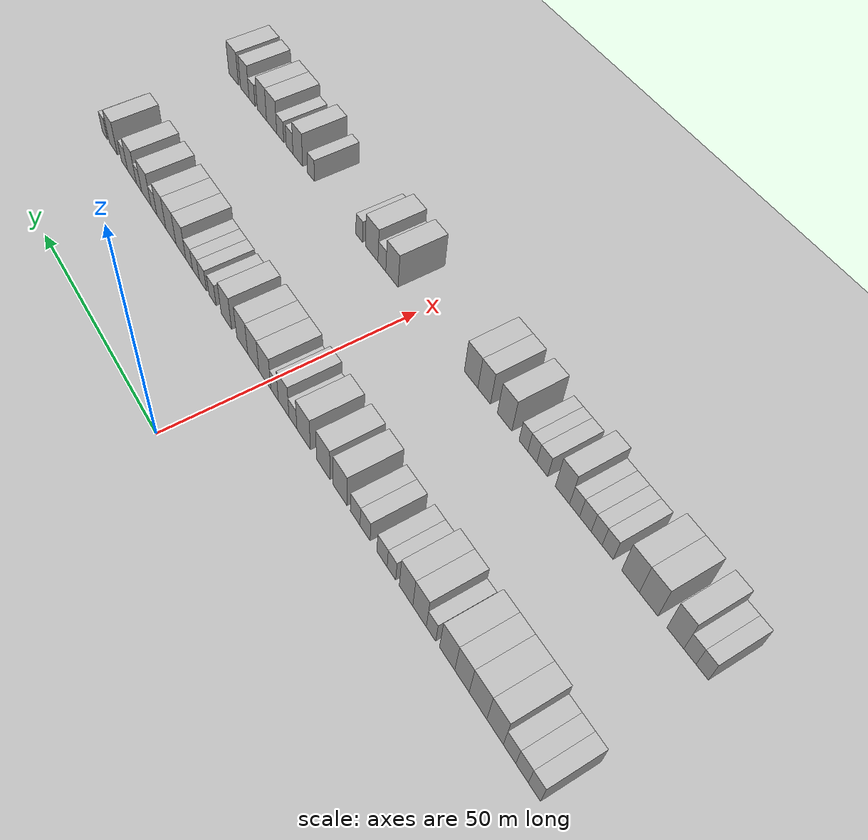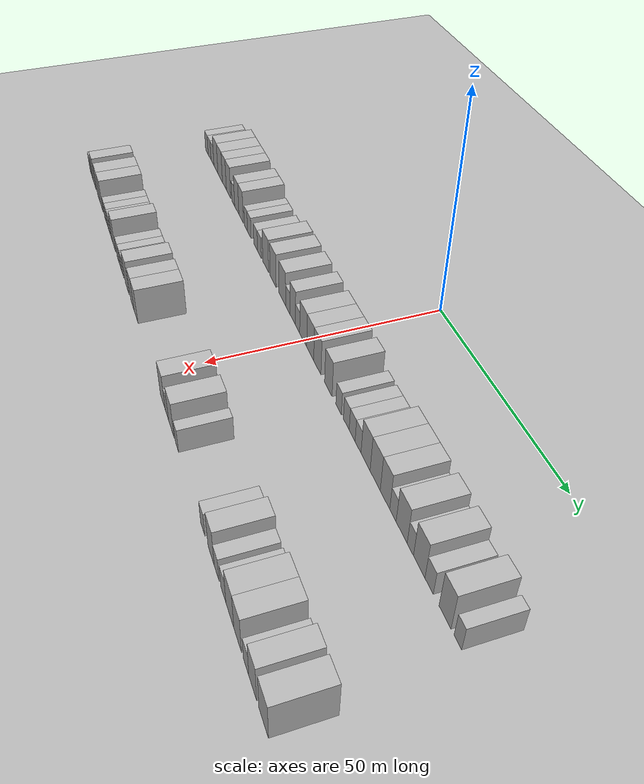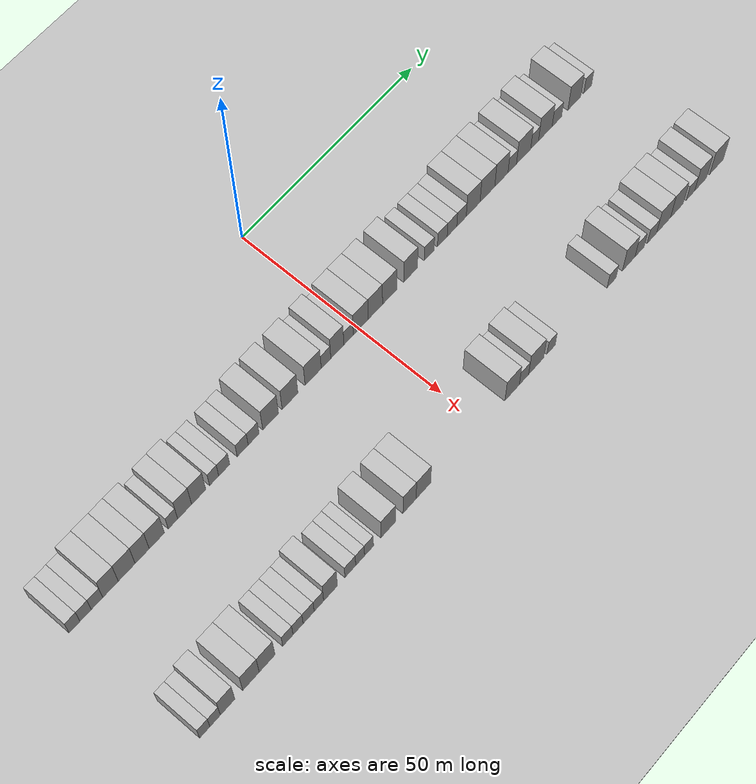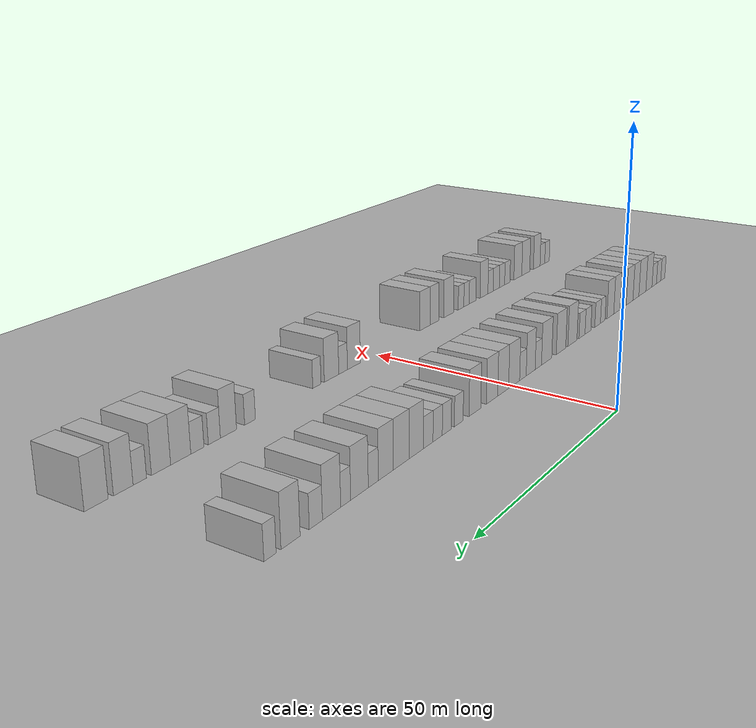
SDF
<sdf version="1.6">
 <world name="default">
  <include><name>ground_plane_1</name><uri>model://HANNAS_ground_plane</uri></include>
  <include>
   <name>ground_plane_2</name>
   <uri>model://HANNAS_ground_plane</uri>
   <pose>100 0 0  0 0 0</pose>
  </include>
  <model name="building_37">
   <static>1</static>
   <pose>25.0000 -76.2087 0 0.000000 0.000000 0.000000</pose>
   <link name="link">
    <pose>0 0 3.00 0 0 0</pose>
    <collision name="collision"><geometry><box><size>10.0000 2.7245 6.0000</size></box></geometry></collision>
    <visual name="visual">
     <cast_shadows>0</cast_shadows>
     <geometry><box><size>10.0000 2.7245 6.0000</size></box></geometry>
     <material>
      <script>
       <uri>model://HANNAS_wall/materials/scripts</uri>
       <uri>model://HANNAS_wall/materials/textures</uri>
       <name>vrc/HANNAS_wall</name>
      </script>
     </material>
    </visual>
   </link>
  </model>
  <model name="building_38">
   <static>1</static>
   <pose>25.0000 -73.4222 0 0.000000 0.000000 0.000000</pose>
   <link name="link">
    <pose>0 0 3.00 0 0 0</pose>
    <collision name="collision"><geometry><box><size>10.0000 2.8485 6.0000</size></box></geometry></collision>
    <visual name="visual">
     <cast_shadows>0</cast_shadows>
     <geometry><box><size>10.0000 2.8485 6.0000</size></box></geometry>
     <material>
      <script>
       <uri>model://HANNAS_wall/materials/scripts</uri>
       <uri>model://HANNAS_wall/materials/textures</uri>
       <name>vrc/HANNAS_wall</name>
      </script>
     </material>
    </visual>
   </link>
  </model>
  <model name="building_39">
   <static>1</static>
   <pose>25.0000 -70.5483 0 0.000000 0.000000 0.000000</pose>
   <link name="link">
    <pose>0 0 3.00 0 0 0</pose>
    <collision name="collision"><geometry><box><size>10.0000 2.8994 6.0000</size></box></geometry></collision>
    <visual name="visual">
     <cast_shadows>0</cast_shadows>
     <geometry><box><size>10.0000 2.8994 6.0000</size></box></geometry>
     <material>
      <script>
       <uri>model://HANNAS_wall/materials/scripts</uri>
       <uri>model://HANNAS_wall/materials/textures</uri>
       <name>vrc/HANNAS_wall</name>
      </script>
     </material>
    </visual>
   </link>
  </model>
  <model name="building_40">
   <static>1</static>
   <pose>25.0000 -67.1381 0 0.000000 0.000000 0.000000</pose>
   <link name="link">
    <pose>0 0 4.50 0 0 0</pose>
    <collision name="collision"><geometry><box><size>10.0000 3.9209 9.0000</size></box></geometry></collision>
    <visual name="visual">
     <cast_shadows>0</cast_shadows>
     <geometry><box><size>10.0000 3.9209 9.0000</size></box></geometry>
     <material>
      <script>
       <uri>model://HANNAS_wall/materials/scripts</uri>
       <uri>model://HANNAS_wall/materials/textures</uri>
       <name>vrc/HANNAS_wall</name>
      </script>
     </material>
    </visual>
   </link>
  </model>
  <model name="building_41">
   <static>1</static>
   <pose>25.0000 -63.0192 0 0.000000 0.000000 0.000000</pose>
   <link name="link">
    <pose>0 0 4.50 0 0 0</pose>
    <collision name="collision"><geometry><box><size>10.0000 4.3170 9.0000</size></box></geometry></collision>
    <visual name="visual">
     <cast_shadows>0</cast_shadows>
     <geometry><box><size>10.0000 4.3170 9.0000</size></box></geometry>
     <material>
      <script>
       <uri>model://HANNAS_wall/materials/scripts</uri>
       <uri>model://HANNAS_wall/materials/textures</uri>
       <name>vrc/HANNAS_wall</name>
      </script>
     </material>
    </visual>
   </link>
  </model>
  <model name="building_42">
   <static>1</static>
   <pose>25.0000 -59.0494 0 0.000000 0.000000 0.000000</pose>
   <link name="link">
    <pose>0 0 4.50 0 0 0</pose>
    <collision name="collision"><geometry><box><size>10.0000 3.6226 9.0000</size></box></geometry></collision>
    <visual name="visual">
     <cast_shadows>0</cast_shadows>
     <geometry><box><size>10.0000 3.6226 9.0000</size></box></geometry>
     <material>
      <script>
       <uri>model://HANNAS_wall/materials/scripts</uri>
       <uri>model://HANNAS_wall/materials/textures</uri>
       <name>vrc/HANNAS_wall</name>
      </script>
     </material>
    </visual>
   </link>
  </model>
  <model name="building_43">
   <static>1</static>
   <pose>25.0000 -55.2728 0 0.000000 0.000000 0.000000</pose>
   <link name="link">
    <pose>0 0 4.50 0 0 0</pose>
    <collision name="collision"><geometry><box><size>10.0000 3.9306 9.0000</size></box></geometry></collision>
    <visual name="visual">
     <cast_shadows>0</cast_shadows>
     <geometry><box><size>10.0000 3.9306 9.0000</size></box></geometry>
     <material>
      <script>
       <uri>model://HANNAS_wall/materials/scripts</uri>
       <uri>model://HANNAS_wall/materials/textures</uri>
       <name>vrc/HANNAS_wall</name>
      </script>
     </material>
    </visual>
   </link>
  </model>
  <model name="building_44">
   <static>1</static>
   <pose>25.0000 -51.0687 0 0.000000 0.000000 0.000000</pose>
   <link name="link">
    <pose>0 0 3.00 0 0 0</pose>
    <collision name="collision"><geometry><box><size>10.0000 2.4778 6.0000</size></box></geometry></collision>
    <visual name="visual">
     <cast_shadows>0</cast_shadows>
     <geometry><box><size>10.0000 2.4778 6.0000</size></box></geometry>
     <material>
      <script>
       <uri>model://HANNAS_wall/materials/scripts</uri>
       <uri>model://HANNAS_wall/materials/textures</uri>
       <name>vrc/HANNAS_wall</name>
      </script>
     </material>
    </visual>
   </link>
  </model>
  <model name="building_45">
   <static>1</static>
   <pose>25.0000 -48.0067 0 0.000000 0.000000 0.000000</pose>
   <link name="link">
    <pose>0 0 4.50 0 0 0</pose>
    <collision name="collision"><geometry><box><size>10.0000 3.6462 9.0000</size></box></geometry></collision>
    <visual name="visual">
     <cast_shadows>0</cast_shadows>
     <geometry><box><size>10.0000 3.6462 9.0000</size></box></geometry>
     <material>
      <script>
       <uri>model://HANNAS_wall/materials/scripts</uri>
       <uri>model://HANNAS_wall/materials/textures</uri>
       <name>vrc/HANNAS_wall</name>
      </script>
     </material>
    </visual>
   </link>
  </model>
  <model name="building_46">
   <static>1</static>
   <pose>25.0000 -44.3082 0 0.000000 0.000000 0.000000</pose>
   <link name="link">
    <pose>0 0 4.50 0 0 0</pose>
    <collision name="collision"><geometry><box><size>10.0000 3.7508 9.0000</size></box></geometry></collision>
    <visual name="visual">
     <cast_shadows>0</cast_shadows>
     <geometry><box><size>10.0000 3.7508 9.0000</size></box></geometry>
     <material>
      <script>
       <uri>model://HANNAS_wall/materials/scripts</uri>
       <uri>model://HANNAS_wall/materials/textures</uri>
       <name>vrc/HANNAS_wall</name>
      </script>
     </material>
    </visual>
   </link>
  </model>
  <model name="building_47">
   <static>1</static>
   <pose>25.0000 -40.2187 0 0.000000 0.000000 0.000000</pose>
   <link name="link">
    <pose>0 0 3.00 0 0 0</pose>
    <collision name="collision"><geometry><box><size>10.0000 2.4282 6.0000</size></box></geometry></collision>
    <visual name="visual">
     <cast_shadows>0</cast_shadows>
     <geometry><box><size>10.0000 2.4282 6.0000</size></box></geometry>
     <material>
      <script>
       <uri>model://HANNAS_wall/materials/scripts</uri>
       <uri>model://HANNAS_wall/materials/textures</uri>
       <name>vrc/HANNAS_wall</name>
      </script>
     </material>
    </visual>
   </link>
  </model>
  <model name="building_48">
   <static>1</static>
   <pose>25.0000 -37.5237 0 0.000000 0.000000 0.000000</pose>
   <link name="link">
    <pose>0 0 3.00 0 0 0</pose>
    <collision name="collision"><geometry><box><size>10.0000 2.9617 6.0000</size></box></geometry></collision>
    <visual name="visual">
     <cast_shadows>0</cast_shadows>
     <geometry><box><size>10.0000 2.9617 6.0000</size></box></geometry>
     <material>
      <script>
       <uri>model://HANNAS_wall/materials/scripts</uri>
       <uri>model://HANNAS_wall/materials/textures</uri>
       <name>vrc/HANNAS_wall</name>
      </script>
     </material>
    </visual>
   </link>
  </model>
  <model name="building_49">
   <static>1</static>
   <pose>25.0000 -32.5608 0 0.000000 0.000000 0.000000</pose>
   <link name="link">
    <pose>0 0 3.00 0 0 0</pose>
    <collision name="collision"><geometry><box><size>10.0000 2.9642 6.0000</size></box></geometry></collision>
    <visual name="visual">
     <cast_shadows>0</cast_shadows>
     <geometry><box><size>10.0000 2.9642 6.0000</size></box></geometry>
     <material>
      <script>
       <uri>model://HANNAS_wall/materials/scripts</uri>
       <uri>model://HANNAS_wall/materials/textures</uri>
       <name>vrc/HANNAS_wall</name>
      </script>
     </material>
    </visual>
   </link>
  </model>
  <model name="building_50">
   <static>1</static>
   <pose>25.0000 -29.5989 0 0.000000 0.000000 0.000000</pose>
   <link name="link">
    <pose>0 0 3.00 0 0 0</pose>
    <collision name="collision"><geometry><box><size>10.0000 2.9595 6.0000</size></box></geometry></collision>
    <visual name="visual">
     <cast_shadows>0</cast_shadows>
     <geometry><box><size>10.0000 2.9595 6.0000</size></box></geometry>
     <material>
      <script>
       <uri>model://HANNAS_wall/materials/scripts</uri>
       <uri>model://HANNAS_wall/materials/textures</uri>
       <name>vrc/HANNAS_wall</name>
      </script>
     </material>
    </visual>
   </link>
  </model>
  <model name="building_51">
   <static>1</static>
   <pose>25.0000 -24.9625 0 0.000000 0.000000 0.000000</pose>
   <link name="link">
    <pose>0 0 4.50 0 0 0</pose>
    <collision name="collision"><geometry><box><size>10.0000 4.3133 9.0000</size></box></geometry></collision>
    <visual name="visual">
     <cast_shadows>0</cast_shadows>
     <geometry><box><size>10.0000 4.3133 9.0000</size></box></geometry>
     <material>
      <script>
       <uri>model://HANNAS_wall/materials/scripts</uri>
       <uri>model://HANNAS_wall/materials/textures</uri>
       <name>vrc/HANNAS_wall</name>
      </script>
     </material>
    </visual>
   </link>
  </model>
  <model name="building_52">
   <static>1</static>
   <pose>25.0000 -19.6324 0 0.000000 0.000000 0.000000</pose>
   <link name="link">
    <pose>0 0 4.50 0 0 0</pose>
    <collision name="collision"><geometry><box><size>10.0000 4.3469 9.0000</size></box></geometry></collision>
    <visual name="visual">
     <cast_shadows>0</cast_shadows>
     <geometry><box><size>10.0000 4.3469 9.0000</size></box></geometry>
     <material>
      <script>
       <uri>model://HANNAS_wall/materials/scripts</uri>
       <uri>model://HANNAS_wall/materials/textures</uri>
       <name>vrc/HANNAS_wall</name>
      </script>
     </material>
    </visual>
   </link>
  </model>
  <model name="building_53">
   <static>1</static>
   <pose>25.0000 -13.2129 0 0.000000 0.000000 0.000000</pose>
   <link name="link">
    <pose>0 0 4.50 0 0 0</pose>
    <collision name="collision"><geometry><box><size>10.0000 4.4921 9.0000</size></box></geometry></collision>
    <visual name="visual">
     <cast_shadows>0</cast_shadows>
     <geometry><box><size>10.0000 4.4921 9.0000</size></box></geometry>
     <material>
      <script>
       <uri>model://HANNAS_wall/materials/scripts</uri>
       <uri>model://HANNAS_wall/materials/textures</uri>
       <name>vrc/HANNAS_wall</name>
      </script>
     </material>
    </visual>
   </link>
  </model>
  <model name="building_54">
   <static>1</static>
   <pose>25.0000 -9.6242 0 0.000000 0.000000 0.000000</pose>
   <link name="link">
    <pose>0 0 3.00 0 0 0</pose>
    <collision name="collision"><geometry><box><size>10.0000 2.6855 6.0000</size></box></geometry></collision>
    <visual name="visual">
     <cast_shadows>0</cast_shadows>
     <geometry><box><size>10.0000 2.6855 6.0000</size></box></geometry>
     <material>
      <script>
       <uri>model://HANNAS_wall/materials/scripts</uri>
       <uri>model://HANNAS_wall/materials/textures</uri>
       <name>vrc/HANNAS_wall</name>
      </script>
     </material>
    </visual>
   </link>
  </model>
  <model name="building_55">
   <static>1</static>
   <pose>25.0000 -6.4341 0 0.000000 0.000000 0.000000</pose>
   <link name="link">
    <pose>0 0 4.50 0 0 0</pose>
    <collision name="collision"><geometry><box><size>10.0000 3.6946 9.0000</size></box></geometry></collision>
    <visual name="visual">
     <cast_shadows>0</cast_shadows>
     <geometry><box><size>10.0000 3.6946 9.0000</size></box></geometry>
     <material>
      <script>
       <uri>model://HANNAS_wall/materials/scripts</uri>
       <uri>model://HANNAS_wall/materials/textures</uri>
       <name>vrc/HANNAS_wall</name>
      </script>
     </material>
    </visual>
   </link>
  </model>
  <model name="building_56">
   <static>1</static>
   <pose>25.0000 -3.2578 0 0.000000 0.000000 0.000000</pose>
   <link name="link">
    <pose>0 0 3.00 0 0 0</pose>
    <collision name="collision"><geometry><box><size>10.0000 2.6580 6.0000</size></box></geometry></collision>
    <visual name="visual">
     <cast_shadows>0</cast_shadows>
     <geometry><box><size>10.0000 2.6580 6.0000</size></box></geometry>
     <material>
      <script>
       <uri>model://HANNAS_wall/materials/scripts</uri>
       <uri>model://HANNAS_wall/materials/textures</uri>
       <name>vrc/HANNAS_wall</name>
      </script>
     </material>
    </visual>
   </link>
  </model>
  <model name="building_57">
   <static>1</static>
   <pose>25.0000 0.2122 0 0.000000 0.000000 0.000000</pose>
   <link name="link">
    <pose>0 0 4.50 0 0 0</pose>
    <collision name="collision"><geometry><box><size>10.0000 4.2821 9.0000</size></box></geometry></collision>
    <visual name="visual">
     <cast_shadows>0</cast_shadows>
     <geometry><box><size>10.0000 4.2821 9.0000</size></box></geometry>
     <material>
      <script>
       <uri>model://HANNAS_wall/materials/scripts</uri>
       <uri>model://HANNAS_wall/materials/textures</uri>
       <name>vrc/HANNAS_wall</name>
      </script>
     </material>
    </visual>
   </link>
  </model>
  <model name="building_58">
   <static>1</static>
   <pose>25.0000 4.4111 0 0.000000 0.000000 0.000000</pose>
   <link name="link">
    <pose>0 0 4.50 0 0 0</pose>
    <collision name="collision"><geometry><box><size>10.0000 4.1157 9.0000</size></box></geometry></collision>
    <visual name="visual">
     <cast_shadows>0</cast_shadows>
     <geometry><box><size>10.0000 4.1157 9.0000</size></box></geometry>
     <material>
      <script>
       <uri>model://HANNAS_wall/materials/scripts</uri>
       <uri>model://HANNAS_wall/materials/textures</uri>
       <name>vrc/HANNAS_wall</name>
      </script>
     </material>
    </visual>
   </link>
  </model>
  <model name="building_59">
   <static>1</static>
   <pose>25.0000 8.5337 0 0.000000 0.000000 0.000000</pose>
   <link name="link">
    <pose>0 0 4.50 0 0 0</pose>
    <collision name="collision"><geometry><box><size>10.0000 4.1295 9.0000</size></box></geometry></collision>
    <visual name="visual">
     <cast_shadows>0</cast_shadows>
     <geometry><box><size>10.0000 4.1295 9.0000</size></box></geometry>
     <material>
      <script>
       <uri>model://HANNAS_wall/materials/scripts</uri>
       <uri>model://HANNAS_wall/materials/textures</uri>
       <name>vrc/HANNAS_wall</name>
      </script>
     </material>
    </visual>
   </link>
  </model>
  <model name="building_60">
   <static>1</static>
   <pose>25.0000 14.6332 0 0.000000 0.000000 0.000000</pose>
   <link name="link">
    <pose>0 0 4.50 0 0 0</pose>
    <collision name="collision"><geometry><box><size>10.0000 4.0694 9.0000</size></box></geometry></collision>
    <visual name="visual">
     <cast_shadows>0</cast_shadows>
     <geometry><box><size>10.0000 4.0694 9.0000</size></box></geometry>
     <material>
      <script>
       <uri>model://HANNAS_wall/materials/scripts</uri>
       <uri>model://HANNAS_wall/materials/textures</uri>
       <name>vrc/HANNAS_wall</name>
      </script>
     </material>
    </visual>
   </link>
  </model>
  <model name="building_61">
   <static>1</static>
   <pose>25.0000 20.1024 0 0.000000 0.000000 0.000000</pose>
   <link name="link">
    <pose>0 0 3.00 0 0 0</pose>
    <collision name="collision"><geometry><box><size>10.0000 2.8690 6.0000</size></box></geometry></collision>
    <visual name="visual">
     <cast_shadows>0</cast_shadows>
     <geometry><box><size>10.0000 2.8690 6.0000</size></box></geometry>
     <material>
      <script>
       <uri>model://HANNAS_wall/materials/scripts</uri>
       <uri>model://HANNAS_wall/materials/textures</uri>
       <name>vrc/HANNAS_wall</name>
      </script>
     </material>
    </visual>
   </link>
  </model>
  <model name="building_62">
   <static>1</static>
   <pose>25.0000 23.9901 0 0.000000 0.000000 0.000000</pose>
   <link name="link">
    <pose>0 0 3.00 0 0 0</pose>
    <collision name="collision"><geometry><box><size>10.0000 2.9064 6.0000</size></box></geometry></collision>
    <visual name="visual">
     <cast_shadows>0</cast_shadows>
     <geometry><box><size>10.0000 2.9064 6.0000</size></box></geometry>
     <material>
      <script>
       <uri>model://HANNAS_wall/materials/scripts</uri>
       <uri>model://HANNAS_wall/materials/textures</uri>
       <name>vrc/HANNAS_wall</name>
      </script>
     </material>
    </visual>
   </link>
  </model>
  <model name="building_63">
   <static>1</static>
   <pose>25.0000 26.8829 0 0.000000 0.000000 0.000000</pose>
   <link name="link">
    <pose>0 0 3.00 0 0 0</pose>
    <collision name="collision"><geometry><box><size>10.0000 2.8791 6.0000</size></box></geometry></collision>
    <visual name="visual">
     <cast_shadows>0</cast_shadows>
     <geometry><box><size>10.0000 2.8791 6.0000</size></box></geometry>
     <material>
      <script>
       <uri>model://HANNAS_wall/materials/scripts</uri>
       <uri>model://HANNAS_wall/materials/textures</uri>
       <name>vrc/HANNAS_wall</name>
      </script>
     </material>
    </visual>
   </link>
  </model>
  <model name="building_64">
   <static>1</static>
   <pose>25.0000 29.7331 0 0.000000 0.000000 0.000000</pose>
   <link name="link">
    <pose>0 0 3.00 0 0 0</pose>
    <collision name="collision"><geometry><box><size>10.0000 2.8213 6.0000</size></box></geometry></collision>
    <visual name="visual">
     <cast_shadows>0</cast_shadows>
     <geometry><box><size>10.0000 2.8213 6.0000</size></box></geometry>
     <material>
      <script>
       <uri>model://HANNAS_wall/materials/scripts</uri>
       <uri>model://HANNAS_wall/materials/textures</uri>
       <name>vrc/HANNAS_wall</name>
      </script>
     </material>
    </visual>
   </link>
  </model>
  <model name="building_65">
   <static>1</static>
   <pose>25.0000 33.2334 0 0.000000 0.000000 0.000000</pose>
   <link name="link">
    <pose>0 0 4.50 0 0 0</pose>
    <collision name="collision"><geometry><box><size>10.0000 4.1793 9.0000</size></box></geometry></collision>
    <visual name="visual">
     <cast_shadows>0</cast_shadows>
     <geometry><box><size>10.0000 4.1793 9.0000</size></box></geometry>
     <material>
      <script>
       <uri>model://HANNAS_wall/materials/scripts</uri>
       <uri>model://HANNAS_wall/materials/textures</uri>
       <name>vrc/HANNAS_wall</name>
      </script>
     </material>
    </visual>
   </link>
  </model>
  <model name="building_66">
   <static>1</static>
   <pose>25.0000 37.5665 0 0.000000 0.000000 0.000000</pose>
   <link name="link">
    <pose>0 0 4.50 0 0 0</pose>
    <collision name="collision"><geometry><box><size>10.0000 4.4867 9.0000</size></box></geometry></collision>
    <visual name="visual">
     <cast_shadows>0</cast_shadows>
     <geometry><box><size>10.0000 4.4867 9.0000</size></box></geometry>
     <material>
      <script>
       <uri>model://HANNAS_wall/materials/scripts</uri>
       <uri>model://HANNAS_wall/materials/textures</uri>
       <name>vrc/HANNAS_wall</name>
      </script>
     </material>
    </visual>
   </link>
  </model>
  <model name="building_67">
   <static>1</static>
   <pose>25.0000 41.8276 0 0.000000 0.000000 0.000000</pose>
   <link name="link">
    <pose>0 0 4.50 0 0 0</pose>
    <collision name="collision"><geometry><box><size>10.0000 4.0356 9.0000</size></box></geometry></collision>
    <visual name="visual">
     <cast_shadows>0</cast_shadows>
     <geometry><box><size>10.0000 4.0356 9.0000</size></box></geometry>
     <material>
      <script>
       <uri>model://HANNAS_wall/materials/scripts</uri>
       <uri>model://HANNAS_wall/materials/textures</uri>
       <name>vrc/HANNAS_wall</name>
      </script>
     </material>
    </visual>
   </link>
  </model>
  <model name="building_68">
   <static>1</static>
   <pose>25.0000 45.1641 0 0.000000 0.000000 0.000000</pose>
   <link name="link">
    <pose>0 0 3.00 0 0 0</pose>
    <collision name="collision"><geometry><box><size>10.0000 2.6372 6.0000</size></box></geometry></collision>
    <visual name="visual">
     <cast_shadows>0</cast_shadows>
     <geometry><box><size>10.0000 2.6372 6.0000</size></box></geometry>
     <material>
      <script>
       <uri>model://HANNAS_wall/materials/scripts</uri>
       <uri>model://HANNAS_wall/materials/textures</uri>
       <name>vrc/HANNAS_wall</name>
      </script>
     </material>
    </visual>
   </link>
  </model>
  <model name="building_69">
   <static>1</static>
   <pose>25.0000 48.6883 0 0.000000 0.000000 0.000000</pose>
   <link name="link">
    <pose>0 0 4.50 0 0 0</pose>
    <collision name="collision"><geometry><box><size>10.0000 4.4112 9.0000</size></box></geometry></collision>
    <visual name="visual">
     <cast_shadows>0</cast_shadows>
     <geometry><box><size>10.0000 4.4112 9.0000</size></box></geometry>
     <material>
      <script>
       <uri>model://HANNAS_wall/materials/scripts</uri>
       <uri>model://HANNAS_wall/materials/textures</uri>
       <name>vrc/HANNAS_wall</name>
      </script>
     </material>
    </visual>
   </link>
  </model>
  <model name="building_70">
   <static>1</static>
   <pose>25.0000 52.1047 0 0.000000 0.000000 0.000000</pose>
   <link name="link">
    <pose>0 0 3.00 0 0 0</pose>
    <collision name="collision"><geometry><box><size>10.0000 2.4217 6.0000</size></box></geometry></collision>
    <visual name="visual">
     <cast_shadows>0</cast_shadows>
     <geometry><box><size>10.0000 2.4217 6.0000</size></box></geometry>
     <material>
      <script>
       <uri>model://HANNAS_wall/materials/scripts</uri>
       <uri>model://HANNAS_wall/materials/textures</uri>
       <name>vrc/HANNAS_wall</name>
      </script>
     </material>
    </visual>
   </link>
  </model>
  <model name="building_71">
   <static>1</static>
   <pose>25.0000 55.4513 0 0.000000 0.000000 0.000000</pose>
   <link name="link">
    <pose>0 0 4.50 0 0 0</pose>
    <collision name="collision"><geometry><box><size>10.0000 4.2715 9.0000</size></box></geometry></collision>
    <visual name="visual">
     <cast_shadows>0</cast_shadows>
     <geometry><box><size>10.0000 4.2715 9.0000</size></box></geometry>
     <material>
      <script>
       <uri>model://HANNAS_wall/materials/scripts</uri>
       <uri>model://HANNAS_wall/materials/textures</uri>
       <name>vrc/HANNAS_wall</name>
      </script>
     </material>
    </visual>
   </link>
  </model>
  <model name="building_72">
   <static>1</static>
   <pose>25.0000 59.0756 0 0.000000 0.000000 0.000000</pose>
   <link name="link">
    <pose>0 0 3.00 0 0 0</pose>
    <collision name="collision"><geometry><box><size>10.0000 2.9772 6.0000</size></box></geometry></collision>
    <visual name="visual">
     <cast_shadows>0</cast_shadows>
     <geometry><box><size>10.0000 2.9772 6.0000</size></box></geometry>
     <material>
      <script>
       <uri>model://HANNAS_wall/materials/scripts</uri>
       <uri>model://HANNAS_wall/materials/textures</uri>
       <name>vrc/HANNAS_wall</name>
      </script>
     </material>
    </visual>
   </link>
  </model>
  <model name="building_73">
   <static>1</static>
   <pose>25.0000 64.5981 0 0.000000 0.000000 0.000000</pose>
   <link name="link">
    <pose>0 0 4.50 0 0 0</pose>
    <collision name="collision"><geometry><box><size>10.0000 4.0677 9.0000</size></box></geometry></collision>
    <visual name="visual">
     <cast_shadows>0</cast_shadows>
     <geometry><box><size>10.0000 4.0677 9.0000</size></box></geometry>
     <material>
      <script>
       <uri>model://HANNAS_wall/materials/scripts</uri>
       <uri>model://HANNAS_wall/materials/textures</uri>
       <name>vrc/HANNAS_wall</name>
      </script>
     </material>
    </visual>
   </link>
  </model>
  <model name="building_74">
   <static>1</static>
   <pose>25.0000 68.8662 0 0.000000 0.000000 0.000000</pose>
   <link name="link">
    <pose>0 0 3.00 0 0 0</pose>
    <collision name="collision"><geometry><box><size>10.0000 2.4684 6.0000</size></box></geometry></collision>
    <visual name="visual">
     <cast_shadows>0</cast_shadows>
     <geometry><box><size>10.0000 2.4684 6.0000</size></box></geometry>
     <material>
      <script>
       <uri>model://HANNAS_wall/materials/scripts</uri>
       <uri>model://HANNAS_wall/materials/textures</uri>
       <name>vrc/HANNAS_wall</name>
      </script>
     </material>
    </visual>
   </link>
  </model>
  <model name="building_141">
   <static>1</static>
   <pose>55.0000 -74.9540 0 0.000000 0.000000 0.000000</pose>
   <link name="link">
    <pose>0 0 3.00 0 0 0</pose>
    <collision name="collision"><geometry><box><size>10.0000 2.5884 6.0000</size></box></geometry></collision>
    <visual name="visual">
     <cast_shadows>0</cast_shadows>
     <geometry><box><size>10.0000 2.5884 6.0000</size></box></geometry>
     <material>
      <script>
       <uri>model://HANNAS_wall/materials/scripts</uri>
       <uri>model://HANNAS_wall/materials/textures</uri>
       <name>vrc/HANNAS_wall</name>
      </script>
     </material>
    </visual>
   </link>
  </model>
  <model name="building_142">
   <static>1</static>
   <pose>55.0000 -72.3371 0 0.000000 0.000000 0.000000</pose>
   <link name="link">
    <pose>0 0 3.00 0 0 0</pose>
    <collision name="collision"><geometry><box><size>10.0000 2.6453 6.0000</size></box></geometry></collision>
    <visual name="visual">
     <cast_shadows>0</cast_shadows>
     <geometry><box><size>10.0000 2.6453 6.0000</size></box></geometry>
     <material>
      <script>
       <uri>model://HANNAS_wall/materials/scripts</uri>
       <uri>model://HANNAS_wall/materials/textures</uri>
       <name>vrc/HANNAS_wall</name>
      </script>
     </material>
    </visual>
   </link>
  </model>
  <model name="building_143">
   <static>1</static>
   <pose>55.0000 -69.1771 0 0.000000 0.000000 0.000000</pose>
   <link name="link">
    <pose>0 0 4.50 0 0 0</pose>
    <collision name="collision"><geometry><box><size>10.0000 3.6748 9.0000</size></box></geometry></collision>
    <visual name="visual">
     <cast_shadows>0</cast_shadows>
     <geometry><box><size>10.0000 3.6748 9.0000</size></box></geometry>
     <material>
      <script>
       <uri>model://HANNAS_wall/materials/scripts</uri>
       <uri>model://HANNAS_wall/materials/textures</uri>
       <name>vrc/HANNAS_wall</name>
      </script>
     </material>
    </visual>
   </link>
  </model>
  <model name="building_144">
   <static>1</static>
   <pose>55.0000 -63.2246 0 0.000000 0.000000 0.000000</pose>
   <link name="link">
    <pose>0 0 4.50 0 0 0</pose>
    <collision name="collision"><geometry><box><size>10.0000 4.2300 9.0000</size></box></geometry></collision>
    <visual name="visual">
     <cast_shadows>0</cast_shadows>
     <geometry><box><size>10.0000 4.2300 9.0000</size></box></geometry>
     <material>
      <script>
       <uri>model://HANNAS_wall/materials/scripts</uri>
       <uri>model://HANNAS_wall/materials/textures</uri>
       <name>vrc/HANNAS_wall</name>
      </script>
     </material>
    </visual>
   </link>
  </model>
  <model name="building_145">
   <static>1</static>
   <pose>55.0000 -59.0582 0 0.000000 0.000000 0.000000</pose>
   <link name="link">
    <pose>0 0 4.50 0 0 0</pose>
    <collision name="collision"><geometry><box><size>10.0000 4.1027 9.0000</size></box></geometry></collision>
    <visual name="visual">
     <cast_shadows>0</cast_shadows>
     <geometry><box><size>10.0000 4.1027 9.0000</size></box></geometry>
     <material>
      <script>
       <uri>model://HANNAS_wall/materials/scripts</uri>
       <uri>model://HANNAS_wall/materials/textures</uri>
       <name>vrc/HANNAS_wall</name>
      </script>
     </material>
    </visual>
   </link>
  </model>
  <model name="building_146">
   <static>1</static>
   <pose>55.0000 -53.6602 0 0.000000 0.000000 0.000000</pose>
   <link name="link">
    <pose>0 0 3.00 0 0 0</pose>
    <collision name="collision"><geometry><box><size>10.0000 2.6934 6.0000</size></box></geometry></collision>
    <visual name="visual">
     <cast_shadows>0</cast_shadows>
     <geometry><box><size>10.0000 2.6934 6.0000</size></box></geometry>
     <material>
      <script>
       <uri>model://HANNAS_wall/materials/scripts</uri>
       <uri>model://HANNAS_wall/materials/textures</uri>
       <name>vrc/HANNAS_wall</name>
      </script>
     </material>
    </visual>
   </link>
  </model>
  <model name="building_147">
   <static>1</static>
   <pose>55.0000 -50.9841 0 0.000000 0.000000 0.000000</pose>
   <link name="link">
    <pose>0 0 3.00 0 0 0</pose>
    <collision name="collision"><geometry><box><size>10.0000 2.6587 6.0000</size></box></geometry></collision>
    <visual name="visual">
     <cast_shadows>0</cast_shadows>
     <geometry><box><size>10.0000 2.6587 6.0000</size></box></geometry>
     <material>
      <script>
       <uri>model://HANNAS_wall/materials/scripts</uri>
       <uri>model://HANNAS_wall/materials/textures</uri>
       <name>vrc/HANNAS_wall</name>
      </script>
     </material>
    </visual>
   </link>
  </model>
  <model name="building_148">
   <static>1</static>
   <pose>55.0000 -48.1979 0 0.000000 0.000000 0.000000</pose>
   <link name="link">
    <pose>0 0 3.00 0 0 0</pose>
    <collision name="collision"><geometry><box><size>10.0000 2.9138 6.0000</size></box></geometry></collision>
    <visual name="visual">
     <cast_shadows>0</cast_shadows>
     <geometry><box><size>10.0000 2.9138 6.0000</size></box></geometry>
     <material>
      <script>
       <uri>model://HANNAS_wall/materials/scripts</uri>
       <uri>model://HANNAS_wall/materials/textures</uri>
       <name>vrc/HANNAS_wall</name>
      </script>
     </material>
    </visual>
   </link>
  </model>
  <model name="building_149">
   <static>1</static>
   <pose>55.0000 -45.4753 0 0.000000 0.000000 0.000000</pose>
   <link name="link">
    <pose>0 0 3.00 0 0 0</pose>
    <collision name="collision"><geometry><box><size>10.0000 2.5314 6.0000</size></box></geometry></collision>
    <visual name="visual">
     <cast_shadows>0</cast_shadows>
     <geometry><box><size>10.0000 2.5314 6.0000</size></box></geometry>
     <material>
      <script>
       <uri>model://HANNAS_wall/materials/scripts</uri>
       <uri>model://HANNAS_wall/materials/textures</uri>
       <name>vrc/HANNAS_wall</name>
      </script>
     </material>
    </visual>
   </link>
  </model>
  <model name="building_150">
   <static>1</static>
   <pose>55.0000 -42.3779 0 0.000000 0.000000 0.000000</pose>
   <link name="link">
    <pose>0 0 4.50 0 0 0</pose>
    <collision name="collision"><geometry><box><size>10.0000 3.6634 9.0000</size></box></geometry></collision>
    <visual name="visual">
     <cast_shadows>0</cast_shadows>
     <geometry><box><size>10.0000 3.6634 9.0000</size></box></geometry>
     <material>
      <script>
       <uri>model://HANNAS_wall/materials/scripts</uri>
       <uri>model://HANNAS_wall/materials/textures</uri>
       <name>vrc/HANNAS_wall</name>
      </script>
     </material>
    </visual>
   </link>
  </model>
  <model name="building_151">
   <static>1</static>
   <pose>55.0000 -37.0887 0 0.000000 0.000000 0.000000</pose>
   <link name="link">
    <pose>0 0 3.00 0 0 0</pose>
    <collision name="collision"><geometry><box><size>10.0000 2.9150 6.0000</size></box></geometry></collision>
    <visual name="visual">
     <cast_shadows>0</cast_shadows>
     <geometry><box><size>10.0000 2.9150 6.0000</size></box></geometry>
     <material>
      <script>
       <uri>model://HANNAS_wall/materials/scripts</uri>
       <uri>model://HANNAS_wall/materials/textures</uri>
       <name>vrc/HANNAS_wall</name>
      </script>
     </material>
    </visual>
   </link>
  </model>
  <model name="building_152">
   <static>1</static>
   <pose>55.0000 -34.4295 0 0.000000 0.000000 0.000000</pose>
   <link name="link">
    <pose>0 0 3.00 0 0 0</pose>
    <collision name="collision"><geometry><box><size>10.0000 2.4034 6.0000</size></box></geometry></collision>
    <visual name="visual">
     <cast_shadows>0</cast_shadows>
     <geometry><box><size>10.0000 2.4034 6.0000</size></box></geometry>
     <material>
      <script>
       <uri>model://HANNAS_wall/materials/scripts</uri>
       <uri>model://HANNAS_wall/materials/textures</uri>
       <name>vrc/HANNAS_wall</name>
      </script>
     </material>
    </visual>
   </link>
  </model>
  <model name="building_153">
   <static>1</static>
   <pose>55.0000 -32.0107 0 0.000000 0.000000 0.000000</pose>
   <link name="link">
    <pose>0 0 3.00 0 0 0</pose>
    <collision name="collision"><geometry><box><size>10.0000 2.4341 6.0000</size></box></geometry></collision>
    <visual name="visual">
     <cast_shadows>0</cast_shadows>
     <geometry><box><size>10.0000 2.4341 6.0000</size></box></geometry>
     <material>
      <script>
       <uri>model://HANNAS_wall/materials/scripts</uri>
       <uri>model://HANNAS_wall/materials/textures</uri>
       <name>vrc/HANNAS_wall</name>
      </script>
     </material>
    </visual>
   </link>
  </model>
  <model name="building_154">
   <static>1</static>
   <pose>55.0000 -26.7533 0 0.000000 0.000000 0.000000</pose>
   <link name="link">
    <pose>0 0 4.50 0 0 0</pose>
    <collision name="collision"><geometry><box><size>10.0000 4.0809 9.0000</size></box></geometry></collision>
    <visual name="visual">
     <cast_shadows>0</cast_shadows>
     <geometry><box><size>10.0000 4.0809 9.0000</size></box></geometry>
     <material>
      <script>
       <uri>model://HANNAS_wall/materials/scripts</uri>
       <uri>model://HANNAS_wall/materials/textures</uri>
       <name>vrc/HANNAS_wall</name>
      </script>
     </material>
    </visual>
   </link>
  </model>
  <model name="building_155">
   <static>1</static>
   <pose>55.0000 -20.8819 0 0.000000 0.000000 0.000000</pose>
   <link name="link">
    <pose>0 0 4.50 0 0 0</pose>
    <collision name="collision"><geometry><box><size>10.0000 3.6619 9.0000</size></box></geometry></collision>
    <visual name="visual">
     <cast_shadows>0</cast_shadows>
     <geometry><box><size>10.0000 3.6619 9.0000</size></box></geometry>
     <material>
      <script>
       <uri>model://HANNAS_wall/materials/scripts</uri>
       <uri>model://HANNAS_wall/materials/textures</uri>
       <name>vrc/HANNAS_wall</name>
      </script>
     </material>
    </visual>
   </link>
  </model>
  <model name="building_156">
   <static>1</static>
   <pose>55.0000 -17.0251 0 0.000000 0.000000 0.000000</pose>
   <link name="link">
    <pose>0 0 4.50 0 0 0</pose>
    <collision name="collision"><geometry><box><size>10.0000 4.0517 9.0000</size></box></geometry></collision>
    <visual name="visual">
     <cast_shadows>0</cast_shadows>
     <geometry><box><size>10.0000 4.0517 9.0000</size></box></geometry>
     <material>
      <script>
       <uri>model://HANNAS_wall/materials/scripts</uri>
       <uri>model://HANNAS_wall/materials/textures</uri>
       <name>vrc/HANNAS_wall</name>
      </script>
     </material>
    </visual>
   </link>
  </model>
  <model name="building_157">
   <static>1</static>
   <pose>55.0000 8.3064 0 0.000000 0.000000 0.000000</pose>
   <link name="link">
    <pose>0 0 4.50 0 0 0</pose>
    <collision name="collision"><geometry><box><size>10.0000 4.2037 9.0000</size></box></geometry></collision>
    <visual name="visual">
     <cast_shadows>0</cast_shadows>
     <geometry><box><size>10.0000 4.2037 9.0000</size></box></geometry>
     <material>
      <script>
       <uri>model://HANNAS_wall/materials/scripts</uri>
       <uri>model://HANNAS_wall/materials/textures</uri>
       <name>vrc/HANNAS_wall</name>
      </script>
     </material>
    </visual>
   </link>
  </model>
  <model name="building_158">
   <static>1</static>
   <pose>55.0000 11.7785 0 0.000000 0.000000 0.000000</pose>
   <link name="link">
    <pose>0 0 3.00 0 0 0</pose>
    <collision name="collision"><geometry><box><size>10.0000 2.7406 6.0000</size></box></geometry></collision>
    <visual name="visual">
     <cast_shadows>0</cast_shadows>
     <geometry><box><size>10.0000 2.7406 6.0000</size></box></geometry>
     <material>
      <script>
       <uri>model://HANNAS_wall/materials/scripts</uri>
       <uri>model://HANNAS_wall/materials/textures</uri>
       <name>vrc/HANNAS_wall</name>
      </script>
     </material>
    </visual>
   </link>
  </model>
  <model name="building_159">
   <static>1</static>
   <pose>55.0000 15.3714 0 0.000000 0.000000 0.000000</pose>
   <link name="link">
    <pose>0 0 4.50 0 0 0</pose>
    <collision name="collision"><geometry><box><size>10.0000 4.4451 9.0000</size></box></geometry></collision>
    <visual name="visual">
     <cast_shadows>0</cast_shadows>
     <geometry><box><size>10.0000 4.4451 9.0000</size></box></geometry>
     <material>
      <script>
       <uri>model://HANNAS_wall/materials/scripts</uri>
       <uri>model://HANNAS_wall/materials/textures</uri>
       <name>vrc/HANNAS_wall</name>
      </script>
     </material>
    </visual>
   </link>
  </model>
  <model name="building_160">
   <static>1</static>
   <pose>55.0000 19.8202 0 0.000000 0.000000 0.000000</pose>
   <link name="link">
    <pose>0 0 3.00 0 0 0</pose>
    <collision name="collision"><geometry><box><size>10.0000 2.4525 6.0000</size></box></geometry></collision>
    <visual name="visual">
     <cast_shadows>0</cast_shadows>
     <geometry><box><size>10.0000 2.4525 6.0000</size></box></geometry>
     <material>
      <script>
       <uri>model://HANNAS_wall/materials/scripts</uri>
       <uri>model://HANNAS_wall/materials/textures</uri>
       <name>vrc/HANNAS_wall</name>
      </script>
     </material>
    </visual>
   </link>
  </model>
  <model name="building_161">
   <static>1</static>
   <pose>55.0000 38.1336 0 0.000000 0.000000 0.000000</pose>
   <link name="link">
    <pose>0 0 3.00 0 0 0</pose>
    <collision name="collision"><geometry><box><size>10.0000 2.7248 6.0000</size></box></geometry></collision>
    <visual name="visual">
     <cast_shadows>0</cast_shadows>
     <geometry><box><size>10.0000 2.7248 6.0000</size></box></geometry>
     <material>
      <script>
       <uri>model://HANNAS_wall/materials/scripts</uri>
       <uri>model://HANNAS_wall/materials/textures</uri>
       <name>vrc/HANNAS_wall</name>
      </script>
     </material>
    </visual>
   </link>
  </model>
  <model name="building_162">
   <static>1</static>
   <pose>55.0000 43.4493 0 0.000000 0.000000 0.000000</pose>
   <link name="link">
    <pose>0 0 4.50 0 0 0</pose>
    <collision name="collision"><geometry><box><size>10.0000 3.9064 9.0000</size></box></geometry></collision>
    <visual name="visual">
     <cast_shadows>0</cast_shadows>
     <geometry><box><size>10.0000 3.9064 9.0000</size></box></geometry>
     <material>
      <script>
       <uri>model://HANNAS_wall/materials/scripts</uri>
       <uri>model://HANNAS_wall/materials/textures</uri>
       <name>vrc/HANNAS_wall</name>
      </script>
     </material>
    </visual>
   </link>
  </model>
  <model name="building_163">
   <static>1</static>
   <pose>55.0000 46.8112 0 0.000000 0.000000 0.000000</pose>
   <link name="link">
    <pose>0 0 3.00 0 0 0</pose>
    <collision name="collision"><geometry><box><size>10.0000 2.8174 6.0000</size></box></geometry></collision>
    <visual name="visual">
     <cast_shadows>0</cast_shadows>
     <geometry><box><size>10.0000 2.8174 6.0000</size></box></geometry>
     <material>
      <script>
       <uri>model://HANNAS_wall/materials/scripts</uri>
       <uri>model://HANNAS_wall/materials/textures</uri>
       <name>vrc/HANNAS_wall</name>
      </script>
     </material>
    </visual>
   </link>
  </model>
  <model name="building_164">
   <static>1</static>
   <pose>55.0000 50.7048 0 0.000000 0.000000 0.000000</pose>
   <link name="link">
    <pose>0 0 3.00 0 0 0</pose>
    <collision name="collision"><geometry><box><size>10.0000 2.9698 6.0000</size></box></geometry></collision>
    <visual name="visual">
     <cast_shadows>0</cast_shadows>
     <geometry><box><size>10.0000 2.9698 6.0000</size></box></geometry>
     <material>
      <script>
       <uri>model://HANNAS_wall/materials/scripts</uri>
       <uri>model://HANNAS_wall/materials/textures</uri>
       <name>vrc/HANNAS_wall</name>
      </script>
     </material>
    </visual>
   </link>
  </model>
  <model name="building_165">
   <static>1</static>
   <pose>55.0000 54.3847 0 0.000000 0.000000 0.000000</pose>
   <link name="link">
    <pose>0 0 4.50 0 0 0</pose>
    <collision name="collision"><geometry><box><size>10.0000 4.3899 9.0000</size></box></geometry></collision>
    <visual name="visual">
     <cast_shadows>0</cast_shadows>
     <geometry><box><size>10.0000 4.3899 9.0000</size></box></geometry>
     <material>
      <script>
       <uri>model://HANNAS_wall/materials/scripts</uri>
       <uri>model://HANNAS_wall/materials/textures</uri>
       <name>vrc/HANNAS_wall</name>
      </script>
     </material>
    </visual>
   </link>
  </model>
  <model name="building_166">
   <static>1</static>
   <pose>55.0000 58.5902 0 0.000000 0.000000 0.000000</pose>
   <link name="link">
    <pose>0 0 4.50 0 0 0</pose>
    <collision name="collision"><geometry><box><size>10.0000 4.0211 9.0000</size></box></geometry></collision>
    <visual name="visual">
     <cast_shadows>0</cast_shadows>
     <geometry><box><size>10.0000 4.0211 9.0000</size></box></geometry>
     <material>
      <script>
       <uri>model://HANNAS_wall/materials/scripts</uri>
       <uri>model://HANNAS_wall/materials/textures</uri>
       <name>vrc/HANNAS_wall</name>
      </script>
     </material>
    </visual>
   </link>
  </model>
  <model name="building_167">
   <static>1</static>
   <pose>55.0000 62.9469 0 0.000000 0.000000 0.000000</pose>
   <link name="link">
    <pose>0 0 3.00 0 0 0</pose>
    <collision name="collision"><geometry><box><size>10.0000 2.6925 6.0000</size></box></geometry></collision>
    <visual name="visual">
     <cast_shadows>0</cast_shadows>
     <geometry><box><size>10.0000 2.6925 6.0000</size></box></geometry>
     <material>
      <script>
       <uri>model://HANNAS_wall/materials/scripts</uri>
       <uri>model://HANNAS_wall/materials/textures</uri>
       <name>vrc/HANNAS_wall</name>
      </script>
     </material>
    </visual>
   </link>
  </model>
  <model name="building_168">
   <static>1</static>
   <pose>55.0000 66.1981 0 0.000000 0.000000 0.000000</pose>
   <link name="link">
    <pose>0 0 4.50 0 0 0</pose>
    <collision name="collision"><geometry><box><size>10.0000 3.8099 9.0000</size></box></geometry></collision>
    <visual name="visual">
     <cast_shadows>0</cast_shadows>
     <geometry><box><size>10.0000 3.8099 9.0000</size></box></geometry>
     <material>
      <script>
       <uri>model://HANNAS_wall/materials/scripts</uri>
       <uri>model://HANNAS_wall/materials/textures</uri>
       <name>vrc/HANNAS_wall</name>
      </script>
     </material>
    </visual>
   </link>
  </model>
  <model name="building_169">
   <static>1</static>
   <pose>55.0000 71.3251 0 0.000000 0.000000 0.000000</pose>
   <link name="link">
    <pose>0 0 4.50 0 0 0</pose>
    <collision name="collision"><geometry><box><size>10.0000 4.4442 9.0000</size></box></geometry></collision>
    <visual name="visual">
     <cast_shadows>0</cast_shadows>
     <geometry><box><size>10.0000 4.4442 9.0000</size></box></geometry>
     <material>
      <script>
       <uri>model://HANNAS_wall/materials/scripts</uri>
       <uri>model://HANNAS_wall/materials/textures</uri>
       <name>vrc/HANNAS_wall</name>
      </script>
     </material>
    </visual>
   </link>
  </model>
 </world>
</sdf>
